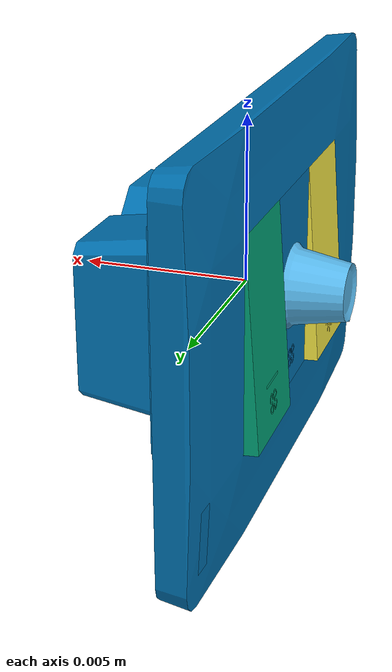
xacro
<robot name="partnet_05449c4f-8af8-4fe5-bcd9-423bf1e982b6" xmlns:xacro="http://wiki.ros.org/xacro">
	<xacro:property name="scale" value="100" /><link name="base" />
	<link name="link_0">
		<visual name="switch-1">
			<origin xyz="${0 / scale} ${0 / scale} ${0 / scale}" />
			<geometry>
				<mesh filename="package://switch_description/urdf/100368/textured_objs/original-30.obj" scale="${1 / scale} ${1 / scale} ${1 / scale}" />
			</geometry>
		</visual>
		<collision>
			<origin xyz="${0 / scale} ${0 / scale} ${0 / scale}" />
			<geometry>
				<mesh filename="package://switch_description/urdf/100368/textured_objs/original-30.obj" scale="${1 / scale} ${1 / scale} ${1 / scale}" />
			</geometry>
		</collision>
	</link>
	<joint name="joint_0" type="continuous">
		<origin xyz="${0 / scale} ${0 / scale} ${0 / scale}" />
		<axis xyz="0 0 1" />
		<child link="link_0" />
		<parent link="link_3" />
	</joint>
	<link name="link_1">
		<visual name="switch-2">
			<origin xyz="${0.46418500000000007 / scale} ${0.005099191978710449 / scale} ${-0.14107846118917522 / scale}" />
			<geometry>
				<mesh filename="package://switch_description/urdf/100368/textured_objs/original-35.obj" scale="${1 / scale} ${1 / scale} ${1 / scale}" />
			</geometry>
		</visual>
		<visual name="switch-2">
			<origin xyz="${0.46418500000000007 / scale} ${0.005099191978710449 / scale} ${-0.14107846118917522 / scale}" />
			<geometry>
				<mesh filename="package://switch_description/urdf/100368/textured_objs/original-41.obj" scale="${1 / scale} ${1 / scale} ${1 / scale}" />
			</geometry>
		</visual>
		<visual name="switch-2">
			<origin xyz="${0.46418500000000007 / scale} ${0.005099191978710449 / scale} ${-0.14107846118917522 / scale}" />
			<geometry>
				<mesh filename="package://switch_description/urdf/100368/textured_objs/original-36.obj" scale="${1 / scale} ${1 / scale} ${1 / scale}" />
			</geometry>
		</visual>
		<visual name="switch-2">
			<origin xyz="${0.46418500000000007 / scale} ${0.005099191978710449 / scale} ${-0.14107846118917522 / scale}" />
			<geometry>
				<mesh filename="package://switch_description/urdf/100368/textured_objs/original-38.obj" scale="${1 / scale} ${1 / scale} ${1 / scale}" />
			</geometry>
		</visual>
		<collision>
			<origin xyz="${0.46418500000000007 / scale} ${0.005099191978710449 / scale} ${-0.14107846118917522 / scale}" />
			<geometry>
				<mesh filename="package://switch_description/urdf/100368/textured_objs/original-35.obj" scale="${1 / scale} ${1 / scale} ${1 / scale}" />
			</geometry>
		</collision>
		<collision>
			<origin xyz="${0.46418500000000007 / scale} ${0.005099191978710449 / scale} ${-0.14107846118917522 / scale}" />
			<geometry>
				<mesh filename="package://switch_description/urdf/100368/textured_objs/original-41.obj" scale="${1 / scale} ${1 / scale} ${1 / scale}" />
			</geometry>
		</collision>
		<collision>
			<origin xyz="${0.46418500000000007 / scale} ${0.005099191978710449 / scale} ${-0.14107846118917522 / scale}" />
			<geometry>
				<mesh filename="package://switch_description/urdf/100368/textured_objs/original-36.obj" scale="${1 / scale} ${1 / scale} ${1 / scale}" />
			</geometry>
		</collision>
		<collision>
			<origin xyz="${0.46418500000000007 / scale} ${0.005099191978710449 / scale} ${-0.14107846118917522 / scale}" />
			<geometry>
				<mesh filename="package://switch_description/urdf/100368/textured_objs/original-38.obj" scale="${1 / scale} ${1 / scale} ${1 / scale}" />
			</geometry>
		</collision>
	</link>
	<joint name="joint_1" type="revolute">
		<origin xyz="${-0.46418500000000007 / scale} ${-0.005099191978710449 / scale} ${0.14107846118917522 / scale}" />
		<axis xyz="1 0 0" />
		<child link="link_1" />
		<parent link="link_3" />
		<limit lower="0.0" upper="0.16964600329384885" effort="10.0" velocity="0.1" />
	</joint>
	<link name="link_2">
		<visual name="switch-3">
			<origin xyz="${0.46418500000000007 / scale} ${0.005099191978710449 / scale} ${-0.14107846118917522 / scale}" />
			<geometry>
				<mesh filename="package://switch_description/urdf/100368/textured_objs/original-19.obj" scale="${1 / scale} ${1 / scale} ${1 / scale}" />
			</geometry>
		</visual>
		<visual name="switch-3">
			<origin xyz="${0.46418500000000007 / scale} ${0.005099191978710449 / scale} ${-0.14107846118917522 / scale}" />
			<geometry>
				<mesh filename="package://switch_description/urdf/100368/textured_objs/original-28.obj" scale="${1 / scale} ${1 / scale} ${1 / scale}" />
			</geometry>
		</visual>
		<visual name="switch-3">
			<origin xyz="${0.46418500000000007 / scale} ${0.005099191978710449 / scale} ${-0.14107846118917522 / scale}" />
			<geometry>
				<mesh filename="package://switch_description/urdf/100368/textured_objs/original-25.obj" scale="${1 / scale} ${1 / scale} ${1 / scale}" />
			</geometry>
		</visual>
		<visual name="switch-3">
			<origin xyz="${0.46418500000000007 / scale} ${0.005099191978710449 / scale} ${-0.14107846118917522 / scale}" />
			<geometry>
				<mesh filename="package://switch_description/urdf/100368/textured_objs/original-22.obj" scale="${1 / scale} ${1 / scale} ${1 / scale}" />
			</geometry>
		</visual>
		<visual name="switch-3">
			<origin xyz="${0.46418500000000007 / scale} ${0.005099191978710449 / scale} ${-0.14107846118917522 / scale}" />
			<geometry>
				<mesh filename="package://switch_description/urdf/100368/textured_objs/original-23.obj" scale="${1 / scale} ${1 / scale} ${1 / scale}" />
			</geometry>
		</visual>
		<visual name="switch-3">
			<origin xyz="${0.46418500000000007 / scale} ${0.005099191978710449 / scale} ${-0.14107846118917522 / scale}" />
			<geometry>
				<mesh filename="package://switch_description/urdf/100368/textured_objs/original-24.obj" scale="${1 / scale} ${1 / scale} ${1 / scale}" />
			</geometry>
		</visual>
		<visual name="switch-3">
			<origin xyz="${0.46418500000000007 / scale} ${0.005099191978710449 / scale} ${-0.14107846118917522 / scale}" />
			<geometry>
				<mesh filename="package://switch_description/urdf/100368/textured_objs/original-26.obj" scale="${1 / scale} ${1 / scale} ${1 / scale}" />
			</geometry>
		</visual>
		<visual name="switch-3">
			<origin xyz="${0.46418500000000007 / scale} ${0.005099191978710449 / scale} ${-0.14107846118917522 / scale}" />
			<geometry>
				<mesh filename="package://switch_description/urdf/100368/textured_objs/original-27.obj" scale="${1 / scale} ${1 / scale} ${1 / scale}" />
			</geometry>
		</visual>
		<collision>
			<origin xyz="${0.46418500000000007 / scale} ${0.005099191978710449 / scale} ${-0.14107846118917522 / scale}" />
			<geometry>
				<mesh filename="package://switch_description/urdf/100368/textured_objs/original-19.obj" scale="${1 / scale} ${1 / scale} ${1 / scale}" />
			</geometry>
		</collision>
		<collision>
			<origin xyz="${0.46418500000000007 / scale} ${0.005099191978710449 / scale} ${-0.14107846118917522 / scale}" />
			<geometry>
				<mesh filename="package://switch_description/urdf/100368/textured_objs/original-28.obj" scale="${1 / scale} ${1 / scale} ${1 / scale}" />
			</geometry>
		</collision>
		<collision>
			<origin xyz="${0.46418500000000007 / scale} ${0.005099191978710449 / scale} ${-0.14107846118917522 / scale}" />
			<geometry>
				<mesh filename="package://switch_description/urdf/100368/textured_objs/original-25.obj" scale="${1 / scale} ${1 / scale} ${1 / scale}" />
			</geometry>
		</collision>
		<collision>
			<origin xyz="${0.46418500000000007 / scale} ${0.005099191978710449 / scale} ${-0.14107846118917522 / scale}" />
			<geometry>
				<mesh filename="package://switch_description/urdf/100368/textured_objs/original-22.obj" scale="${1 / scale} ${1 / scale} ${1 / scale}" />
			</geometry>
		</collision>
		<collision>
			<origin xyz="${0.46418500000000007 / scale} ${0.005099191978710449 / scale} ${-0.14107846118917522 / scale}" />
			<geometry>
				<mesh filename="package://switch_description/urdf/100368/textured_objs/original-23.obj" scale="${1 / scale} ${1 / scale} ${1 / scale}" />
			</geometry>
		</collision>
		<collision>
			<origin xyz="${0.46418500000000007 / scale} ${0.005099191978710449 / scale} ${-0.14107846118917522 / scale}" />
			<geometry>
				<mesh filename="package://switch_description/urdf/100368/textured_objs/original-24.obj" scale="${1 / scale} ${1 / scale} ${1 / scale}" />
			</geometry>
		</collision>
		<collision>
			<origin xyz="${0.46418500000000007 / scale} ${0.005099191978710449 / scale} ${-0.14107846118917522 / scale}" />
			<geometry>
				<mesh filename="package://switch_description/urdf/100368/textured_objs/original-26.obj" scale="${1 / scale} ${1 / scale} ${1 / scale}" />
			</geometry>
		</collision>
		<collision>
			<origin xyz="${0.46418500000000007 / scale} ${0.005099191978710449 / scale} ${-0.14107846118917522 / scale}" />
			<geometry>
				<mesh filename="package://switch_description/urdf/100368/textured_objs/original-27.obj" scale="${1 / scale} ${1 / scale} ${1 / scale}" />
			</geometry>
		</collision>
	</link>
	<joint name="joint_2" type="revolute">
		<origin xyz="${-0.46418500000000007 / scale} ${-0.005099191978710449 / scale} ${0.14107846118917522 / scale}" />
		<axis xyz="1 0 0" />
		<child link="link_2" />
		<parent link="link_3" />
		<limit lower="0.0" upper="0.16964600329384885" effort="10.0" velocity="0.1" />
	</joint>
	<link name="link_3">
		<visual name="base_body-4">
			<origin xyz="${0 / scale} ${0 / scale} ${0 / scale}" />
			<geometry>
				<mesh filename="package://switch_description/urdf/100368/textured_objs/original-21.obj" scale="${1 / scale} ${1 / scale} ${1 / scale}" />
			</geometry>
		</visual>
		<visual name="base_body-4">
			<origin xyz="${0 / scale} ${0 / scale} ${0 / scale}" />
			<geometry>
				<mesh filename="package://switch_description/urdf/100368/textured_objs/original-4.obj" scale="${1 / scale} ${1 / scale} ${1 / scale}" />
			</geometry>
		</visual>
		<visual name="base_body-4">
			<origin xyz="${0 / scale} ${0 / scale} ${0 / scale}" />
			<geometry>
				<mesh filename="package://switch_description/urdf/100368/textured_objs/original-3.obj" scale="${1 / scale} ${1 / scale} ${1 / scale}" />
			</geometry>
		</visual>
		<visual name="base_body-4">
			<origin xyz="${0 / scale} ${0 / scale} ${0 / scale}" />
			<geometry>
				<mesh filename="package://switch_description/urdf/100368/textured_objs/original-33.obj" scale="${1 / scale} ${1 / scale} ${1 / scale}" />
			</geometry>
		</visual>
		<visual name="base_body-4">
			<origin xyz="${0 / scale} ${0 / scale} ${0 / scale}" />
			<geometry>
				<mesh filename="package://switch_description/urdf/100368/textured_objs/original-2.obj" scale="${1 / scale} ${1 / scale} ${1 / scale}" />
			</geometry>
		</visual>
		<visual name="base_body-4">
			<origin xyz="${0 / scale} ${0 / scale} ${0 / scale}" />
			<geometry>
				<mesh filename="package://switch_description/urdf/100368/textured_objs/original-16.obj" scale="${1 / scale} ${1 / scale} ${1 / scale}" />
			</geometry>
		</visual>
		<visual name="base_body-4">
			<origin xyz="${0 / scale} ${0 / scale} ${0 / scale}" />
			<geometry>
				<mesh filename="package://switch_description/urdf/100368/textured_objs/original-8.obj" scale="${1 / scale} ${1 / scale} ${1 / scale}" />
			</geometry>
		</visual>
		<visual name="base_body-4">
			<origin xyz="${0 / scale} ${0 / scale} ${0 / scale}" />
			<geometry>
				<mesh filename="package://switch_description/urdf/100368/textured_objs/original-13.obj" scale="${1 / scale} ${1 / scale} ${1 / scale}" />
			</geometry>
		</visual>
		<visual name="base_body-4">
			<origin xyz="${0 / scale} ${0 / scale} ${0 / scale}" />
			<geometry>
				<mesh filename="package://switch_description/urdf/100368/textured_objs/original-9.obj" scale="${1 / scale} ${1 / scale} ${1 / scale}" />
			</geometry>
		</visual>
		<visual name="base_body-4">
			<origin xyz="${0 / scale} ${0 / scale} ${0 / scale}" />
			<geometry>
				<mesh filename="package://switch_description/urdf/100368/textured_objs/original-39.obj" scale="${1 / scale} ${1 / scale} ${1 / scale}" />
			</geometry>
		</visual>
		<visual name="base_body-4">
			<origin xyz="${0 / scale} ${0 / scale} ${0 / scale}" />
			<geometry>
				<mesh filename="package://switch_description/urdf/100368/textured_objs/original-6.obj" scale="${1 / scale} ${1 / scale} ${1 / scale}" />
			</geometry>
		</visual>
		<visual name="base_body-4">
			<origin xyz="${0 / scale} ${0 / scale} ${0 / scale}" />
			<geometry>
				<mesh filename="package://switch_description/urdf/100368/textured_objs/original-31.obj" scale="${1 / scale} ${1 / scale} ${1 / scale}" />
			</geometry>
		</visual>
		<visual name="base_body-4">
			<origin xyz="${0 / scale} ${0 / scale} ${0 / scale}" />
			<geometry>
				<mesh filename="package://switch_description/urdf/100368/textured_objs/original-37.obj" scale="${1 / scale} ${1 / scale} ${1 / scale}" />
			</geometry>
		</visual>
		<visual name="base_body-4">
			<origin xyz="${0 / scale} ${0 / scale} ${0 / scale}" />
			<geometry>
				<mesh filename="package://switch_description/urdf/100368/textured_objs/original-15.obj" scale="${1 / scale} ${1 / scale} ${1 / scale}" />
			</geometry>
		</visual>
		<visual name="base_body-4">
			<origin xyz="${0 / scale} ${0 / scale} ${0 / scale}" />
			<geometry>
				<mesh filename="package://switch_description/urdf/100368/textured_objs/original-11.obj" scale="${1 / scale} ${1 / scale} ${1 / scale}" />
			</geometry>
		</visual>
		<visual name="base_body-4">
			<origin xyz="${0 / scale} ${0 / scale} ${0 / scale}" />
			<geometry>
				<mesh filename="package://switch_description/urdf/100368/textured_objs/original-18.obj" scale="${1 / scale} ${1 / scale} ${1 / scale}" />
			</geometry>
		</visual>
		<visual name="base_body-4">
			<origin xyz="${0 / scale} ${0 / scale} ${0 / scale}" />
			<geometry>
				<mesh filename="package://switch_description/urdf/100368/textured_objs/original-12.obj" scale="${1 / scale} ${1 / scale} ${1 / scale}" />
			</geometry>
		</visual>
		<visual name="base_body-4">
			<origin xyz="${0 / scale} ${0 / scale} ${0 / scale}" />
			<geometry>
				<mesh filename="package://switch_description/urdf/100368/textured_objs/original-20.obj" scale="${1 / scale} ${1 / scale} ${1 / scale}" />
			</geometry>
		</visual>
		<visual name="base_body-4">
			<origin xyz="${0 / scale} ${0 / scale} ${0 / scale}" />
			<geometry>
				<mesh filename="package://switch_description/urdf/100368/textured_objs/original-32.obj" scale="${1 / scale} ${1 / scale} ${1 / scale}" />
			</geometry>
		</visual>
		<visual name="base_body-4">
			<origin xyz="${0 / scale} ${0 / scale} ${0 / scale}" />
			<geometry>
				<mesh filename="package://switch_description/urdf/100368/textured_objs/original-7.obj" scale="${1 / scale} ${1 / scale} ${1 / scale}" />
			</geometry>
		</visual>
		<visual name="base_body-4">
			<origin xyz="${0 / scale} ${0 / scale} ${0 / scale}" />
			<geometry>
				<mesh filename="package://switch_description/urdf/100368/textured_objs/original-10.obj" scale="${1 / scale} ${1 / scale} ${1 / scale}" />
			</geometry>
		</visual>
		<visual name="base_body-4">
			<origin xyz="${0 / scale} ${0 / scale} ${0 / scale}" />
			<geometry>
				<mesh filename="package://switch_description/urdf/100368/textured_objs/original-14.obj" scale="${1 / scale} ${1 / scale} ${1 / scale}" />
			</geometry>
		</visual>
		<visual name="base_body-4">
			<origin xyz="${0 / scale} ${0 / scale} ${0 / scale}" />
			<geometry>
				<mesh filename="package://switch_description/urdf/100368/textured_objs/original-40.obj" scale="${1 / scale} ${1 / scale} ${1 / scale}" />
			</geometry>
		</visual>
		<collision>
			<origin xyz="${0 / scale} ${0 / scale} ${0 / scale}" />
			<geometry>
				<mesh filename="package://switch_description/urdf/100368/textured_objs/original-21.obj" scale="${1 / scale} ${1 / scale} ${1 / scale}" />
			</geometry>
		</collision>
		<collision>
			<origin xyz="${0 / scale} ${0 / scale} ${0 / scale}" />
			<geometry>
				<mesh filename="package://switch_description/urdf/100368/textured_objs/original-4.obj" scale="${1 / scale} ${1 / scale} ${1 / scale}" />
			</geometry>
		</collision>
		<collision>
			<origin xyz="${0 / scale} ${0 / scale} ${0 / scale}" />
			<geometry>
				<mesh filename="package://switch_description/urdf/100368/textured_objs/original-3.obj" scale="${1 / scale} ${1 / scale} ${1 / scale}" />
			</geometry>
		</collision>
		<collision>
			<origin xyz="${0 / scale} ${0 / scale} ${0 / scale}" />
			<geometry>
				<mesh filename="package://switch_description/urdf/100368/textured_objs/original-33.obj" scale="${1 / scale} ${1 / scale} ${1 / scale}" />
			</geometry>
		</collision>
		<collision>
			<origin xyz="${0 / scale} ${0 / scale} ${0 / scale}" />
			<geometry>
				<mesh filename="package://switch_description/urdf/100368/textured_objs/original-2.obj" scale="${1 / scale} ${1 / scale} ${1 / scale}" />
			</geometry>
		</collision>
		<collision>
			<origin xyz="${0 / scale} ${0 / scale} ${0 / scale}" />
			<geometry>
				<mesh filename="package://switch_description/urdf/100368/textured_objs/original-16.obj" scale="${1 / scale} ${1 / scale} ${1 / scale}" />
			</geometry>
		</collision>
		<collision>
			<origin xyz="${0 / scale} ${0 / scale} ${0 / scale}" />
			<geometry>
				<mesh filename="package://switch_description/urdf/100368/textured_objs/original-8.obj" scale="${1 / scale} ${1 / scale} ${1 / scale}" />
			</geometry>
		</collision>
		<collision>
			<origin xyz="${0 / scale} ${0 / scale} ${0 / scale}" />
			<geometry>
				<mesh filename="package://switch_description/urdf/100368/textured_objs/original-13.obj" scale="${1 / scale} ${1 / scale} ${1 / scale}" />
			</geometry>
		</collision>
		<collision>
			<origin xyz="${0 / scale} ${0 / scale} ${0 / scale}" />
			<geometry>
				<mesh filename="package://switch_description/urdf/100368/textured_objs/original-9.obj" scale="${1 / scale} ${1 / scale} ${1 / scale}" />
			</geometry>
		</collision>
		<collision>
			<origin xyz="${0 / scale} ${0 / scale} ${0 / scale}" />
			<geometry>
				<mesh filename="package://switch_description/urdf/100368/textured_objs/original-39.obj" scale="${1 / scale} ${1 / scale} ${1 / scale}" />
			</geometry>
		</collision>
		<collision>
			<origin xyz="${0 / scale} ${0 / scale} ${0 / scale}" />
			<geometry>
				<mesh filename="package://switch_description/urdf/100368/textured_objs/original-6.obj" scale="${1 / scale} ${1 / scale} ${1 / scale}" />
			</geometry>
		</collision>
		<collision>
			<origin xyz="${0 / scale} ${0 / scale} ${0 / scale}" />
			<geometry>
				<mesh filename="package://switch_description/urdf/100368/textured_objs/original-31.obj" scale="${1 / scale} ${1 / scale} ${1 / scale}" />
			</geometry>
		</collision>
		<collision>
			<origin xyz="${0 / scale} ${0 / scale} ${0 / scale}" />
			<geometry>
				<mesh filename="package://switch_description/urdf/100368/textured_objs/original-37.obj" scale="${1 / scale} ${1 / scale} ${1 / scale}" />
			</geometry>
		</collision>
		<collision>
			<origin xyz="${0 / scale} ${0 / scale} ${0 / scale}" />
			<geometry>
				<mesh filename="package://switch_description/urdf/100368/textured_objs/original-15.obj" scale="${1 / scale} ${1 / scale} ${1 / scale}" />
			</geometry>
		</collision>
		<collision>
			<origin xyz="${0 / scale} ${0 / scale} ${0 / scale}" />
			<geometry>
				<mesh filename="package://switch_description/urdf/100368/textured_objs/original-11.obj" scale="${1 / scale} ${1 / scale} ${1 / scale}" />
			</geometry>
		</collision>
		<collision>
			<origin xyz="${0 / scale} ${0 / scale} ${0 / scale}" />
			<geometry>
				<mesh filename="package://switch_description/urdf/100368/textured_objs/original-18.obj" scale="${1 / scale} ${1 / scale} ${1 / scale}" />
			</geometry>
		</collision>
		<collision>
			<origin xyz="${0 / scale} ${0 / scale} ${0 / scale}" />
			<geometry>
				<mesh filename="package://switch_description/urdf/100368/textured_objs/original-12.obj" scale="${1 / scale} ${1 / scale} ${1 / scale}" />
			</geometry>
		</collision>
		<collision>
			<origin xyz="${0 / scale} ${0 / scale} ${0 / scale}" />
			<geometry>
				<mesh filename="package://switch_description/urdf/100368/textured_objs/original-20.obj" scale="${1 / scale} ${1 / scale} ${1 / scale}" />
			</geometry>
		</collision>
		<collision>
			<origin xyz="${0 / scale} ${0 / scale} ${0 / scale}" />
			<geometry>
				<mesh filename="package://switch_description/urdf/100368/textured_objs/original-32.obj" scale="${1 / scale} ${1 / scale} ${1 / scale}" />
			</geometry>
		</collision>
		<collision>
			<origin xyz="${0 / scale} ${0 / scale} ${0 / scale}" />
			<geometry>
				<mesh filename="package://switch_description/urdf/100368/textured_objs/original-7.obj" scale="${1 / scale} ${1 / scale} ${1 / scale}" />
			</geometry>
		</collision>
		<collision>
			<origin xyz="${0 / scale} ${0 / scale} ${0 / scale}" />
			<geometry>
				<mesh filename="package://switch_description/urdf/100368/textured_objs/original-10.obj" scale="${1 / scale} ${1 / scale} ${1 / scale}" />
			</geometry>
		</collision>
		<collision>
			<origin xyz="${0 / scale} ${0 / scale} ${0 / scale}" />
			<geometry>
				<mesh filename="package://switch_description/urdf/100368/textured_objs/original-14.obj" scale="${1 / scale} ${1 / scale} ${1 / scale}" />
			</geometry>
		</collision>
		<collision>
			<origin xyz="${0 / scale} ${0 / scale} ${0 / scale}" />
			<geometry>
				<mesh filename="package://switch_description/urdf/100368/textured_objs/original-40.obj" scale="${1 / scale} ${1 / scale} ${1 / scale}" />
			</geometry>
		</collision>
	</link>
	<joint name="joint_3" type="fixed">
		<origin rpy="1.570796326794897 0 -1.570796326794897" xyz="${0 / scale} ${0 / scale} ${0 / scale}" />
		<child link="link_3" />
		<parent link="base" />
	</joint>
</robot>
